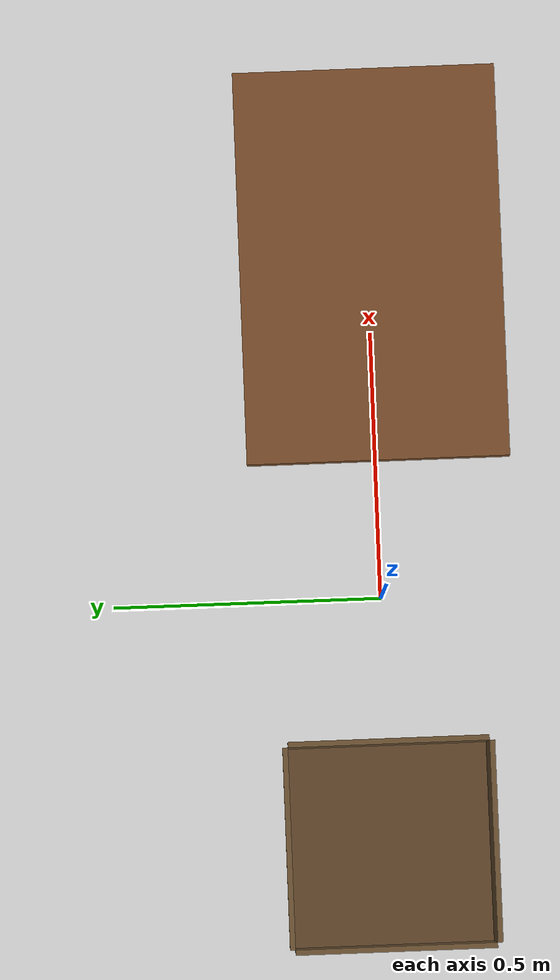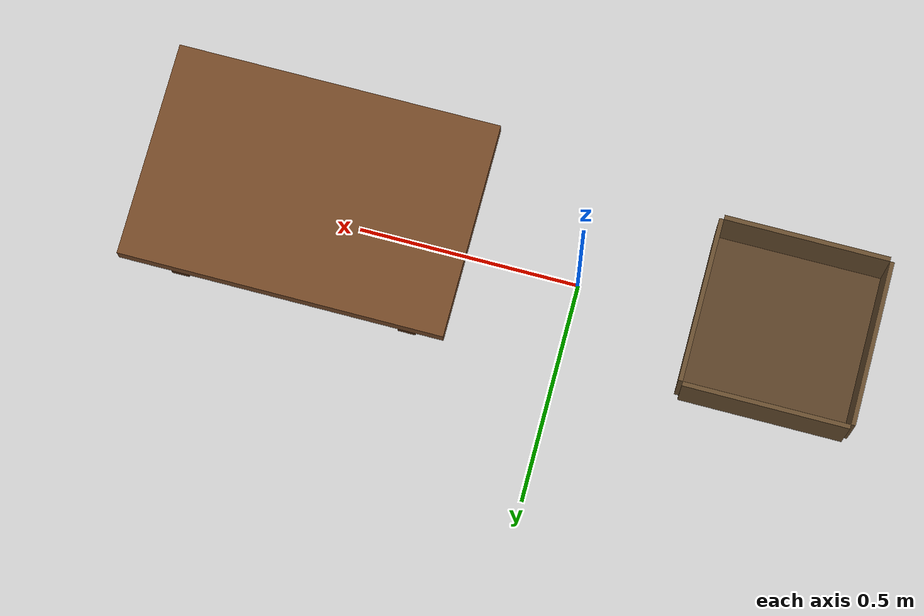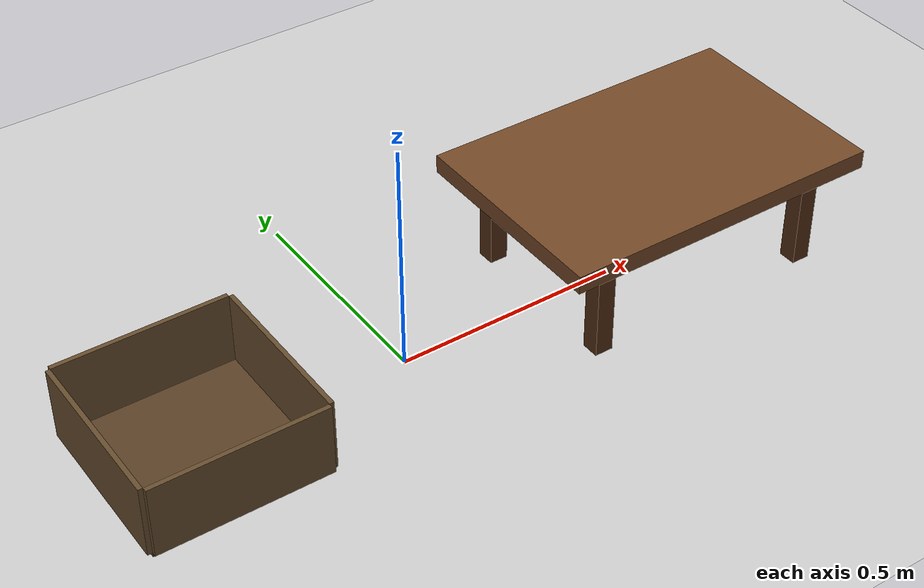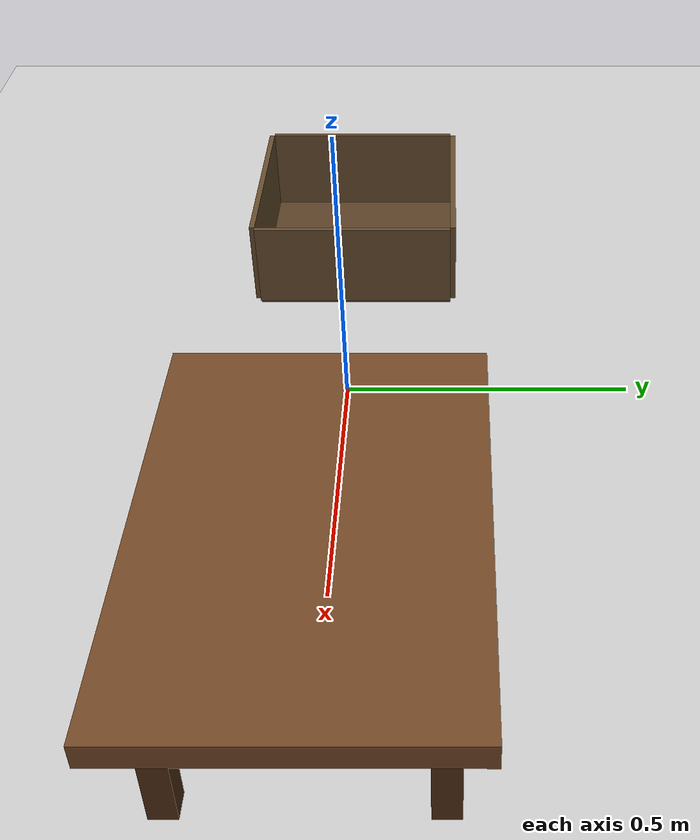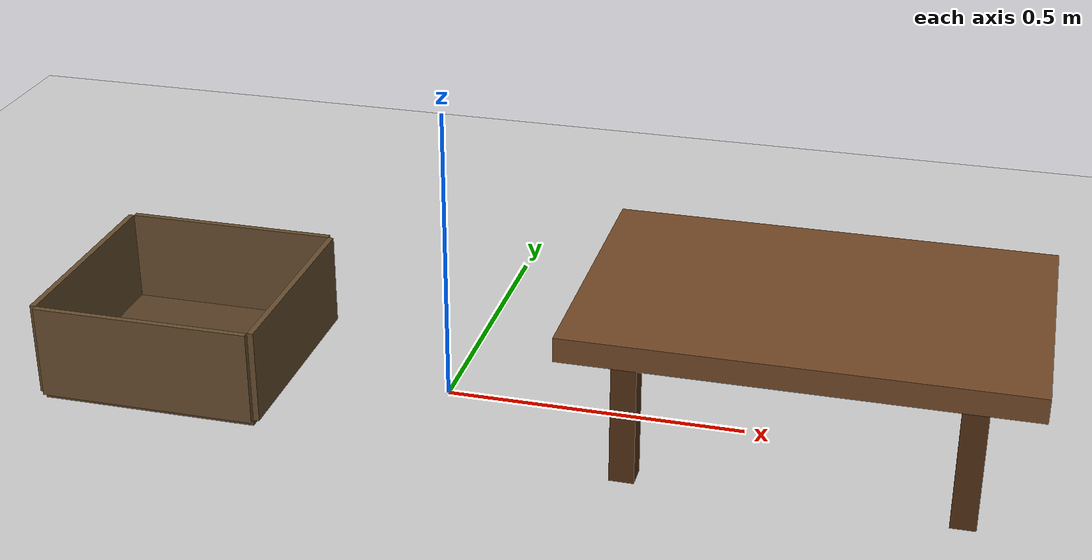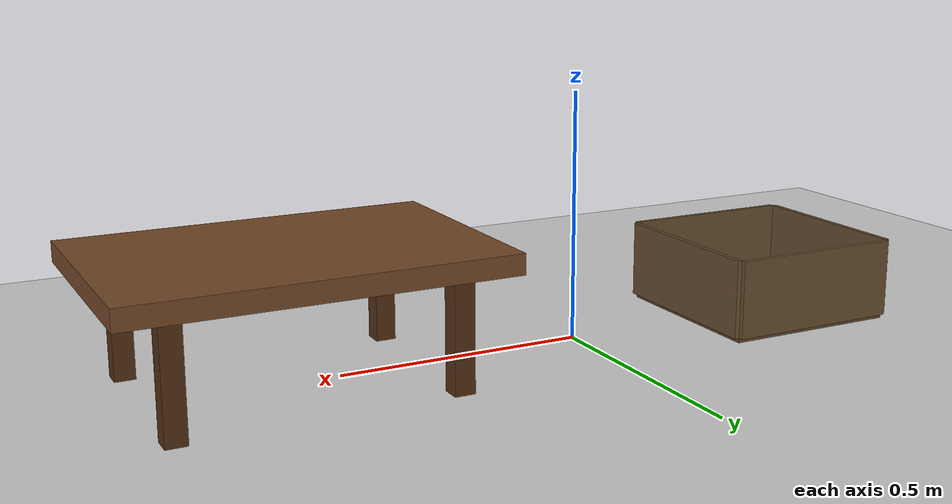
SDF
<sdf version='1.9'>
  <!-- Misma mesa y entorno que vision_test.world, sin piezas geométricas de color
       (para dataset YCB: mesa vacía salvo lo que spawnea el generador). -->
  <world name='vision_test_ycb_world'>
    <gravity>0 0 -9.8</gravity>
    <magnetic_field>6e-06 2.3e-05 -4.2e-05</magnetic_field>
    <atmosphere type='adiabatic'/>

    <!-- DEBUG estabilidad: SceneBroadcaster dispara warnings de serialización
         justo antes del segfault en ros2_control. Lo desactivamos para aislar. -->

    <!-- 100 Hz: alineado con controller_manager (panda_controllers.yaml) para
         evitar avisos y posibles carreras con gz_ros2_control. -->
    <physics type='ode'>
      <max_step_size>0.001</max_step_size>
      <real_time_factor>1</real_time_factor>
      <real_time_update_rate>1000</real_time_update_rate>
    </physics>

    <!-- Iluminación suave para dataset: menos caras negras por sombras duras / contraste -->
    <scene>
      <ambient>0.78 0.78 0.78 1</ambient>
      <background>0.75 0.78 0.82 1</background>
      <shadows>false</shadows>
    </scene>

    <light name='sun' type='directional'>
      <pose>0 0 10 0 0 0</pose>
      <cast_shadows>false</cast_shadows>
      <intensity>0.95</intensity>
      <direction>-0.35 0.25 -0.9</direction>
      <diffuse>0.92 0.92 0.92 1</diffuse>
      <specular>0.35 0.35 0.35 1</specular>
      <attenuation>
        <range>1000</range>
        <linear>0.01</linear>
        <constant>0.9</constant>
        <quadratic>0.001</quadratic>
      </attenuation>
    </light>

    <light name='fill' type='directional'>
      <pose>0 0 8 0 0 0</pose>
      <cast_shadows>false</cast_shadows>
      <intensity>0.55</intensity>
      <direction>0.45 -0.35 -0.85</direction>
      <diffuse>0.88 0.88 0.95 1</diffuse>
      <specular>0.15 0.15 0.18 1</specular>
    </light>

    <model name='ground_plane'>
      <static>true</static>
      <link name='link'>
        <collision name='collision'>
          <geometry>
            <plane>
              <normal>0 0 1</normal>
              <size>100 100</size>
            </plane>
          </geometry>
        </collision>
        <visual name='visual'>
          <geometry>
            <plane>
              <normal>0 0 1</normal>
              <size>100 100</size>
            </plane>
          </geometry>
          <material>
            <ambient>0.8 0.8 0.8 1</ambient>
            <diffuse>0.8 0.8 0.8 1</diffuse>
            <specular>0.8 0.8 0.8 1</specular>
          </material>
        </visual>
      </link>
    </model>

    <model name='vision_test_table'>
      <static>true</static>
      <link name='table_top'>
        <pose>0.60 0.0 0.24 0 0 0</pose>
        <collision name='table_collision'>
          <geometry>
            <box>
              <size>0.72 0.48 0.04</size>
            </box>
          </geometry>

        </collision>
        <visual name='table_visual'>
          <geometry>
            <box>
              <size>0.72 0.48 0.04</size>
            </box>
          </geometry>
          <material>
            <ambient>0.45 0.28 0.15 1</ambient>
            <diffuse>0.45 0.28 0.15 1</diffuse>
          </material>
        </visual>
      </link>
    </model>

    <model name='table_leg_front_left'>
      <static>true</static>
      <link name='link'>
        <pose>0.34 0.18 0.11 0 0 0</pose>
        <collision name='collision'>
          <geometry>
            <box>
              <size>0.04 0.04 0.22</size>
            </box>
          </geometry>
        </collision>
        <visual name='visual'>
          <geometry>
            <box>
              <size>0.04 0.04 0.22</size>
            </box>
          </geometry>
          <material>
            <ambient>0.32 0.18 0.08 1</ambient>
            <diffuse>0.32 0.18 0.08 1</diffuse>
          </material>
        </visual>
      </link>
    </model>

    <model name='table_leg_front_right'>
      <static>true</static>
      <link name='link'>
        <pose>0.86 0.18 0.11 0 0 0</pose>
        <collision name='collision'>
          <geometry>
            <box>
              <size>0.04 0.04 0.22</size>
            </box>
          </geometry>
        </collision>
        <visual name='visual'>
          <geometry>
            <box>
              <size>0.04 0.04 0.22</size>
            </box>
          </geometry>
          <material>
            <ambient>0.32 0.18 0.08 1</ambient>
            <diffuse>0.32 0.18 0.08 1</diffuse>
          </material>
        </visual>
      </link>
    </model>

    <model name='table_leg_back_left'>
      <static>true</static>
      <link name='link'>
        <pose>0.34 -0.18 0.11 0 0 0</pose>
        <collision name='collision'>
          <geometry>
            <box>
              <size>0.04 0.04 0.22</size>
            </box>
          </geometry>
        </collision>
        <visual name='visual'>
          <geometry>
            <box>
              <size>0.04 0.04 0.22</size>
            </box>
          </geometry>
          <material>
            <ambient>0.32 0.18 0.08 1</ambient>
            <diffuse>0.32 0.18 0.08 1</diffuse>
          </material>
        </visual>
      </link>
    </model>

    <model name='table_leg_back_right'>
      <static>true</static>
      <link name='link'>
        <pose>0.86 -0.18 0.11 0 0 0</pose>
        <collision name='collision'>
          <geometry>
            <box>
              <size>0.04 0.04 0.22</size>
            </box>
          </geometry>
        </collision>
        <visual name='visual'>
          <geometry>
            <box>
              <size>0.04 0.04 0.22</size>
            </box>
          </geometry>
          <material>
            <ambient>0.32 0.18 0.08 1</ambient>
            <diffuse>0.32 0.18 0.08 1</diffuse>
          </material>
        </visual>
      </link>
    </model>

    <!-- Bandeja demo 2x2 compacta: interior ~0.37 x 0.37 m, paredes ~0.16 m (top z≈0.17) -->
    <model name='deposit_box'>
      <static>true</static>
      <pose>-0.46 0 0 0 0 0</pose>

      <link name='bottom'>
        <pose>0 0 0.005 0 0 0</pose>
        <collision name='collision'>
          <geometry><box><size>0.37 0.37 0.01</size></box></geometry>
        </collision>
        <visual name='visual'>
          <geometry><box><size>0.37 0.37 0.01</size></box></geometry>
          <material>
            <ambient>0.35 0.25 0.15 1</ambient>
            <diffuse>0.35 0.25 0.15 1</diffuse>
          </material>
        </visual>
      </link>

      <link name='wall_front'>
        <pose>0.190 0 0.090 0 0 0</pose>
        <collision name='collision'>
          <geometry><box><size>0.01 0.37 0.16</size></box></geometry>
        </collision>
        <visual name='visual'>
          <geometry><box><size>0.01 0.37 0.16</size></box></geometry>
          <material>
            <ambient>0.40 0.30 0.18 1</ambient>
            <diffuse>0.40 0.30 0.18 1</diffuse>
          </material>
        </visual>
      </link>

      <link name='wall_back'>
        <pose>-0.190 0 0.090 0 0 0</pose>
        <collision name='collision'>
          <geometry><box><size>0.01 0.37 0.16</size></box></geometry>
        </collision>
        <visual name='visual'>
          <geometry><box><size>0.01 0.37 0.16</size></box></geometry>
          <material>
            <ambient>0.40 0.30 0.18 1</ambient>
            <diffuse>0.40 0.30 0.18 1</diffuse>
          </material>
        </visual>
      </link>

      <link name='wall_left'>
        <pose>0 0.190 0.090 0 0 0</pose>
        <collision name='collision'>
          <geometry><box><size>0.37 0.01 0.16</size></box></geometry>
        </collision>
        <visual name='visual'>
          <geometry><box><size>0.37 0.01 0.16</size></box></geometry>
          <material>
            <ambient>0.40 0.30 0.18 1</ambient>
            <diffuse>0.40 0.30 0.18 1</diffuse>
          </material>
        </visual>
      </link>

      <link name='wall_right'>
        <pose>0 -0.190 0.090 0 0 0</pose>
        <collision name='collision'>
          <geometry><box><size>0.37 0.01 0.16</size></box></geometry>
        </collision>
        <visual name='visual'>
          <geometry><box><size>0.37 0.01 0.16</size></box></geometry>
          <material>
            <ambient>0.40 0.30 0.18 1</ambient>
            <diffuse>0.40 0.30 0.18 1</diffuse>
          </material>
        </visual>
      </link>
    </model>
  </world>
</sdf>
